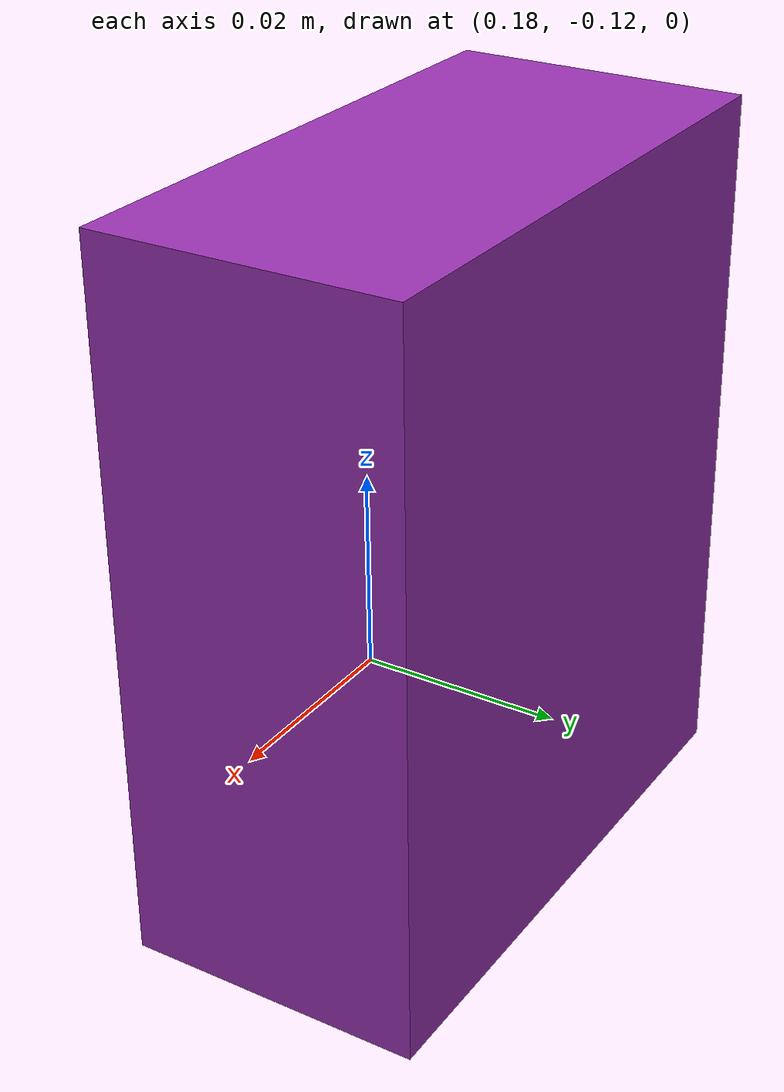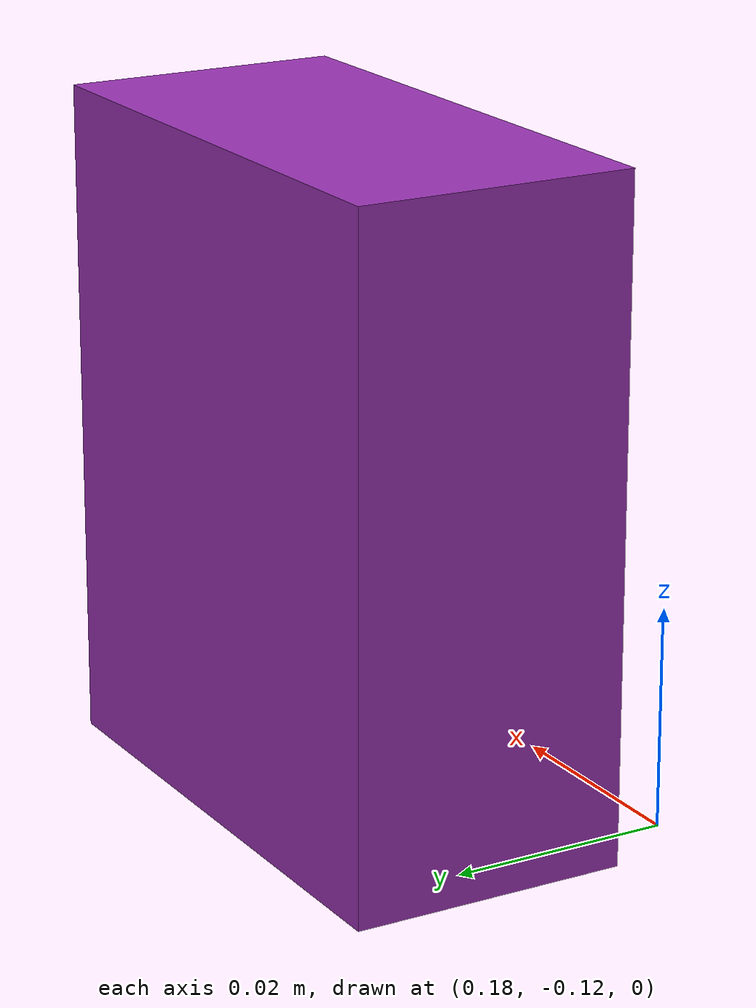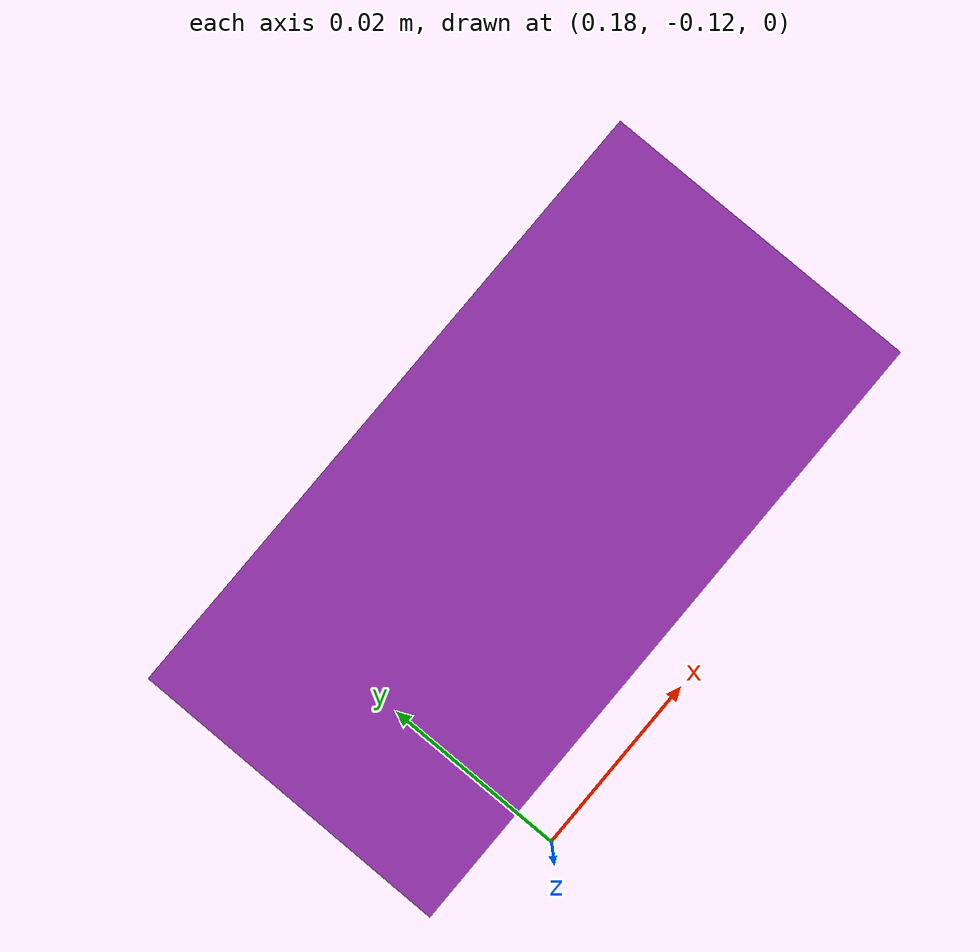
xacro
<?xml version="1.0"?>
<robot name="box">

<link name="base_link">
  <collision>
    <origin xyz="0.2 -0.1 0.03" rpy="0 0 0"/>
    <geometry>
      <box size="0.05 0.025 0.06" />
    </geometry>
  </collision>

  <visual>
    <origin xyz="0.2 -0.1 0.03" rpy="0 0 0"/>
    <geometry>
      <box size="0.05 0.025 0.06" />
    </geometry>
  </visual>

  <inertial>
    <origin xyz="0.2 -0.1 0.03" rpy="0 0 0" />
    <mass value="0.05" />
    <inertia
      ixx="0.05" ixy="0.0"  ixz="0.0"
      iyy="0.05" iyz="0.0"
      izz="0.05" />
  </inertial>
  </link>

<gazebo reference="base_link">
  <material>Gazebo/Purple</material>
    <mu1>10</mu1>
    <mu2>10</mu2>
</gazebo>

</robot>
